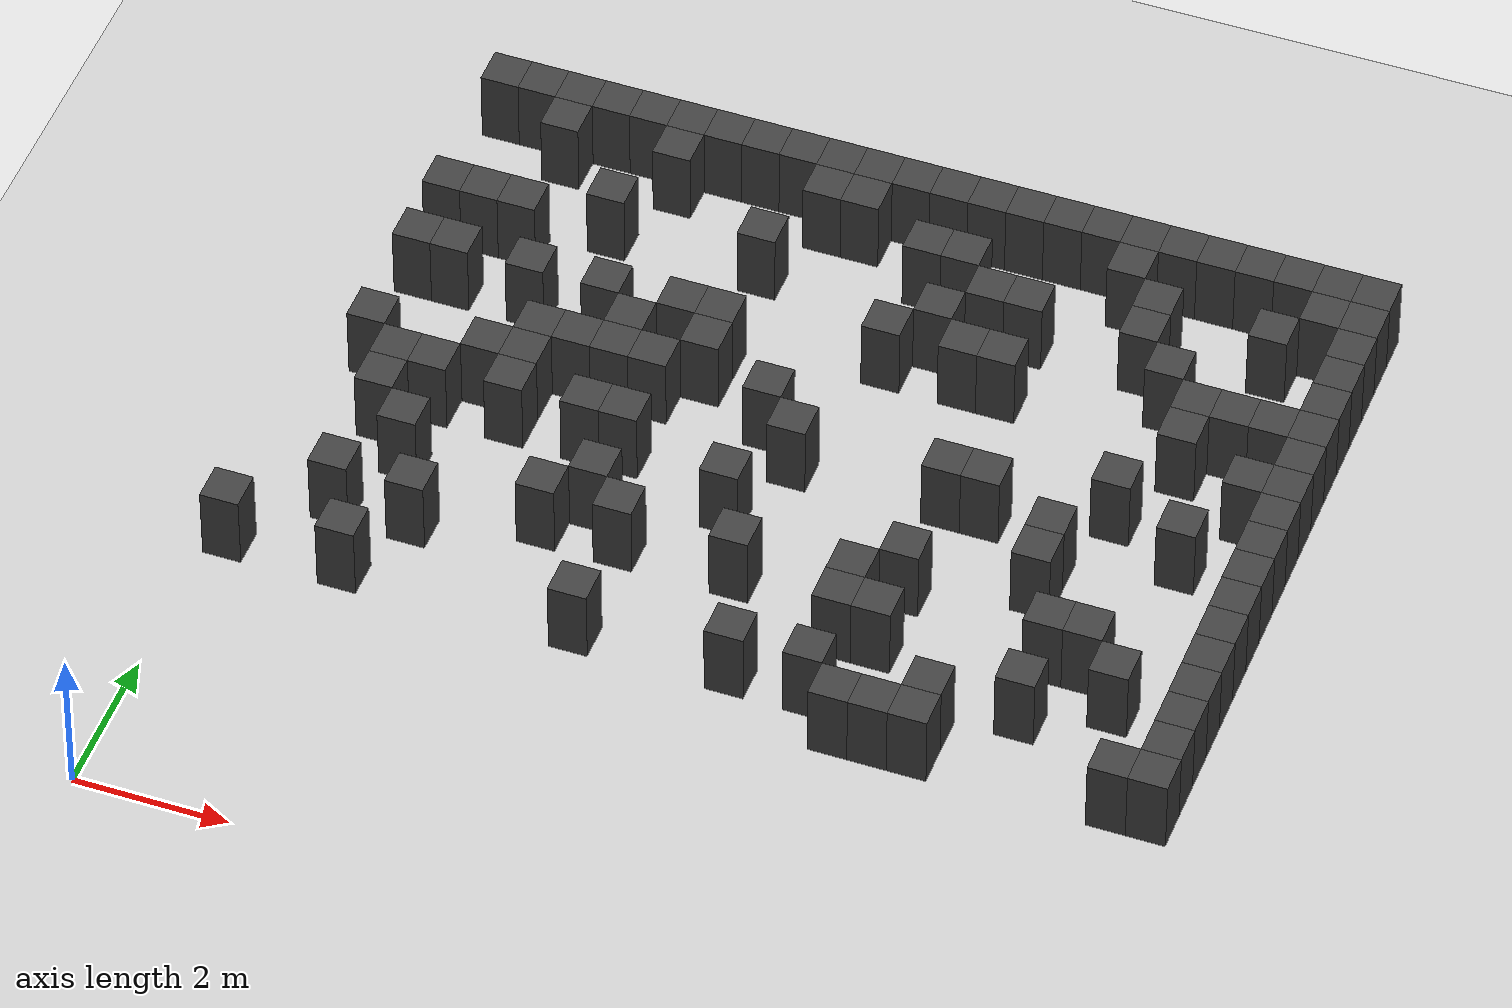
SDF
<sdf version="1.7">
 <world name="map_4951">
  <model name="ground_plane">
   <static>true</static>
   <link name="link">
    <collision name="collision">
     <geometry><plane><normal>0 0 1</normal><size>200 200</size></plane></geometry>
    </collision>
    <visual name="visual">
     <geometry><plane><normal>0 0 1</normal><size>200 200</size></plane></geometry>
     <material><ambient>0.8 0.8 0.8 1</ambient><diffuse>0.8 0.8 0.8 1</diffuse></material>
    </visual>
   </link>
  </model>
  <model name="maze_environment">
   <static>true</static>
   <link name="wall_26">
    <pose>0.750 12.250 0.500 0 0 0</pose>
    <collision name="col"><geometry><box><size>0.5 0.5 1.0</size></box></geometry></collision>
    <visual name="vis">
     <geometry><box><size>0.5 0.5 1.0</size></box></geometry>
     <material><ambient>0.15 0.15 0.15 1</ambient><diffuse>0.25 0.25 0.25 1</diffuse></material>
    </visual>
   </link>
   <link name="wall_27">
    <pose>1.250 12.250 0.500 0 0 0</pose>
    <collision name="col"><geometry><box><size>0.5 0.5 1.0</size></box></geometry></collision>
    <visual name="vis">
     <geometry><box><size>0.5 0.5 1.0</size></box></geometry>
     <material><ambient>0.15 0.15 0.15 1</ambient><diffuse>0.25 0.25 0.25 1</diffuse></material>
    </visual>
   </link>
   <link name="wall_28">
    <pose>1.750 12.250 0.500 0 0 0</pose>
    <collision name="col"><geometry><box><size>0.5 0.5 1.0</size></box></geometry></collision>
    <visual name="vis">
     <geometry><box><size>0.5 0.5 1.0</size></box></geometry>
     <material><ambient>0.15 0.15 0.15 1</ambient><diffuse>0.25 0.25 0.25 1</diffuse></material>
    </visual>
   </link>
   <link name="wall_29">
    <pose>2.250 12.250 0.500 0 0 0</pose>
    <collision name="col"><geometry><box><size>0.5 0.5 1.0</size></box></geometry></collision>
    <visual name="vis">
     <geometry><box><size>0.5 0.5 1.0</size></box></geometry>
     <material><ambient>0.15 0.15 0.15 1</ambient><diffuse>0.25 0.25 0.25 1</diffuse></material>
    </visual>
   </link>
   <link name="wall_30">
    <pose>2.750 12.250 0.500 0 0 0</pose>
    <collision name="col"><geometry><box><size>0.5 0.5 1.0</size></box></geometry></collision>
    <visual name="vis">
     <geometry><box><size>0.5 0.5 1.0</size></box></geometry>
     <material><ambient>0.15 0.15 0.15 1</ambient><diffuse>0.25 0.25 0.25 1</diffuse></material>
    </visual>
   </link>
   <link name="wall_31">
    <pose>3.250 12.250 0.500 0 0 0</pose>
    <collision name="col"><geometry><box><size>0.5 0.5 1.0</size></box></geometry></collision>
    <visual name="vis">
     <geometry><box><size>0.5 0.5 1.0</size></box></geometry>
     <material><ambient>0.15 0.15 0.15 1</ambient><diffuse>0.25 0.25 0.25 1</diffuse></material>
    </visual>
   </link>
   <link name="wall_32">
    <pose>3.750 12.250 0.500 0 0 0</pose>
    <collision name="col"><geometry><box><size>0.5 0.5 1.0</size></box></geometry></collision>
    <visual name="vis">
     <geometry><box><size>0.5 0.5 1.0</size></box></geometry>
     <material><ambient>0.15 0.15 0.15 1</ambient><diffuse>0.25 0.25 0.25 1</diffuse></material>
    </visual>
   </link>
   <link name="wall_33">
    <pose>4.250 12.250 0.500 0 0 0</pose>
    <collision name="col"><geometry><box><size>0.5 0.5 1.0</size></box></geometry></collision>
    <visual name="vis">
     <geometry><box><size>0.5 0.5 1.0</size></box></geometry>
     <material><ambient>0.15 0.15 0.15 1</ambient><diffuse>0.25 0.25 0.25 1</diffuse></material>
    </visual>
   </link>
   <link name="wall_34">
    <pose>4.750 12.250 0.500 0 0 0</pose>
    <collision name="col"><geometry><box><size>0.5 0.5 1.0</size></box></geometry></collision>
    <visual name="vis">
     <geometry><box><size>0.5 0.5 1.0</size></box></geometry>
     <material><ambient>0.15 0.15 0.15 1</ambient><diffuse>0.25 0.25 0.25 1</diffuse></material>
    </visual>
   </link>
   <link name="wall_35">
    <pose>5.250 12.250 0.500 0 0 0</pose>
    <collision name="col"><geometry><box><size>0.5 0.5 1.0</size></box></geometry></collision>
    <visual name="vis">
     <geometry><box><size>0.5 0.5 1.0</size></box></geometry>
     <material><ambient>0.15 0.15 0.15 1</ambient><diffuse>0.25 0.25 0.25 1</diffuse></material>
    </visual>
   </link>
   <link name="wall_36">
    <pose>5.750 12.250 0.500 0 0 0</pose>
    <collision name="col"><geometry><box><size>0.5 0.5 1.0</size></box></geometry></collision>
    <visual name="vis">
     <geometry><box><size>0.5 0.5 1.0</size></box></geometry>
     <material><ambient>0.15 0.15 0.15 1</ambient><diffuse>0.25 0.25 0.25 1</diffuse></material>
    </visual>
   </link>
   <link name="wall_37">
    <pose>6.250 12.250 0.500 0 0 0</pose>
    <collision name="col"><geometry><box><size>0.5 0.5 1.0</size></box></geometry></collision>
    <visual name="vis">
     <geometry><box><size>0.5 0.5 1.0</size></box></geometry>
     <material><ambient>0.15 0.15 0.15 1</ambient><diffuse>0.25 0.25 0.25 1</diffuse></material>
    </visual>
   </link>
   <link name="wall_38">
    <pose>6.750 12.250 0.500 0 0 0</pose>
    <collision name="col"><geometry><box><size>0.5 0.5 1.0</size></box></geometry></collision>
    <visual name="vis">
     <geometry><box><size>0.5 0.5 1.0</size></box></geometry>
     <material><ambient>0.15 0.15 0.15 1</ambient><diffuse>0.25 0.25 0.25 1</diffuse></material>
    </visual>
   </link>
   <link name="wall_39">
    <pose>7.250 12.250 0.500 0 0 0</pose>
    <collision name="col"><geometry><box><size>0.5 0.5 1.0</size></box></geometry></collision>
    <visual name="vis">
     <geometry><box><size>0.5 0.5 1.0</size></box></geometry>
     <material><ambient>0.15 0.15 0.15 1</ambient><diffuse>0.25 0.25 0.25 1</diffuse></material>
    </visual>
   </link>
   <link name="wall_40">
    <pose>7.750 12.250 0.500 0 0 0</pose>
    <collision name="col"><geometry><box><size>0.5 0.5 1.0</size></box></geometry></collision>
    <visual name="vis">
     <geometry><box><size>0.5 0.5 1.0</size></box></geometry>
     <material><ambient>0.15 0.15 0.15 1</ambient><diffuse>0.25 0.25 0.25 1</diffuse></material>
    </visual>
   </link>
   <link name="wall_41">
    <pose>8.250 12.250 0.500 0 0 0</pose>
    <collision name="col"><geometry><box><size>0.5 0.5 1.0</size></box></geometry></collision>
    <visual name="vis">
     <geometry><box><size>0.5 0.5 1.0</size></box></geometry>
     <material><ambient>0.15 0.15 0.15 1</ambient><diffuse>0.25 0.25 0.25 1</diffuse></material>
    </visual>
   </link>
   <link name="wall_42">
    <pose>8.750 12.250 0.500 0 0 0</pose>
    <collision name="col"><geometry><box><size>0.5 0.5 1.0</size></box></geometry></collision>
    <visual name="vis">
     <geometry><box><size>0.5 0.5 1.0</size></box></geometry>
     <material><ambient>0.15 0.15 0.15 1</ambient><diffuse>0.25 0.25 0.25 1</diffuse></material>
    </visual>
   </link>
   <link name="wall_43">
    <pose>9.250 12.250 0.500 0 0 0</pose>
    <collision name="col"><geometry><box><size>0.5 0.5 1.0</size></box></geometry></collision>
    <visual name="vis">
     <geometry><box><size>0.5 0.5 1.0</size></box></geometry>
     <material><ambient>0.15 0.15 0.15 1</ambient><diffuse>0.25 0.25 0.25 1</diffuse></material>
    </visual>
   </link>
   <link name="wall_44">
    <pose>9.750 12.250 0.500 0 0 0</pose>
    <collision name="col"><geometry><box><size>0.5 0.5 1.0</size></box></geometry></collision>
    <visual name="vis">
     <geometry><box><size>0.5 0.5 1.0</size></box></geometry>
     <material><ambient>0.15 0.15 0.15 1</ambient><diffuse>0.25 0.25 0.25 1</diffuse></material>
    </visual>
   </link>
   <link name="wall_45">
    <pose>10.250 12.250 0.500 0 0 0</pose>
    <collision name="col"><geometry><box><size>0.5 0.5 1.0</size></box></geometry></collision>
    <visual name="vis">
     <geometry><box><size>0.5 0.5 1.0</size></box></geometry>
     <material><ambient>0.15 0.15 0.15 1</ambient><diffuse>0.25 0.25 0.25 1</diffuse></material>
    </visual>
   </link>
   <link name="wall_46">
    <pose>10.750 12.250 0.500 0 0 0</pose>
    <collision name="col"><geometry><box><size>0.5 0.5 1.0</size></box></geometry></collision>
    <visual name="vis">
     <geometry><box><size>0.5 0.5 1.0</size></box></geometry>
     <material><ambient>0.15 0.15 0.15 1</ambient><diffuse>0.25 0.25 0.25 1</diffuse></material>
    </visual>
   </link>
   <link name="wall_47">
    <pose>11.250 12.250 0.500 0 0 0</pose>
    <collision name="col"><geometry><box><size>0.5 0.5 1.0</size></box></geometry></collision>
    <visual name="vis">
     <geometry><box><size>0.5 0.5 1.0</size></box></geometry>
     <material><ambient>0.15 0.15 0.15 1</ambient><diffuse>0.25 0.25 0.25 1</diffuse></material>
    </visual>
   </link>
   <link name="wall_48">
    <pose>11.750 12.250 0.500 0 0 0</pose>
    <collision name="col"><geometry><box><size>0.5 0.5 1.0</size></box></geometry></collision>
    <visual name="vis">
     <geometry><box><size>0.5 0.5 1.0</size></box></geometry>
     <material><ambient>0.15 0.15 0.15 1</ambient><diffuse>0.25 0.25 0.25 1</diffuse></material>
    </visual>
   </link>
   <link name="wall_49">
    <pose>12.250 12.250 0.500 0 0 0</pose>
    <collision name="col"><geometry><box><size>0.5 0.5 1.0</size></box></geometry></collision>
    <visual name="vis">
     <geometry><box><size>0.5 0.5 1.0</size></box></geometry>
     <material><ambient>0.15 0.15 0.15 1</ambient><diffuse>0.25 0.25 0.25 1</diffuse></material>
    </visual>
   </link>
   <link name="wall_57">
    <pose>1.750 11.750 0.500 0 0 0</pose>
    <collision name="col"><geometry><box><size>0.5 0.5 1.0</size></box></geometry></collision>
    <visual name="vis">
     <geometry><box><size>0.5 0.5 1.0</size></box></geometry>
     <material><ambient>0.15 0.15 0.15 1</ambient><diffuse>0.25 0.25 0.25 1</diffuse></material>
    </visual>
   </link>
   <link name="wall_58">
    <pose>3.250 11.750 0.500 0 0 0</pose>
    <collision name="col"><geometry><box><size>0.5 0.5 1.0</size></box></geometry></collision>
    <visual name="vis">
     <geometry><box><size>0.5 0.5 1.0</size></box></geometry>
     <material><ambient>0.15 0.15 0.15 1</ambient><diffuse>0.25 0.25 0.25 1</diffuse></material>
    </visual>
   </link>
   <link name="wall_59">
    <pose>5.250 11.750 0.500 0 0 0</pose>
    <collision name="col"><geometry><box><size>0.5 0.5 1.0</size></box></geometry></collision>
    <visual name="vis">
     <geometry><box><size>0.5 0.5 1.0</size></box></geometry>
     <material><ambient>0.15 0.15 0.15 1</ambient><diffuse>0.25 0.25 0.25 1</diffuse></material>
    </visual>
   </link>
   <link name="wall_60">
    <pose>5.750 11.750 0.500 0 0 0</pose>
    <collision name="col"><geometry><box><size>0.5 0.5 1.0</size></box></geometry></collision>
    <visual name="vis">
     <geometry><box><size>0.5 0.5 1.0</size></box></geometry>
     <material><ambient>0.15 0.15 0.15 1</ambient><diffuse>0.25 0.25 0.25 1</diffuse></material>
    </visual>
   </link>
   <link name="wall_61">
    <pose>9.250 11.750 0.500 0 0 0</pose>
    <collision name="col"><geometry><box><size>0.5 0.5 1.0</size></box></geometry></collision>
    <visual name="vis">
     <geometry><box><size>0.5 0.5 1.0</size></box></geometry>
     <material><ambient>0.15 0.15 0.15 1</ambient><diffuse>0.25 0.25 0.25 1</diffuse></material>
    </visual>
   </link>
   <link name="wall_62">
    <pose>11.750 11.750 0.500 0 0 0</pose>
    <collision name="col"><geometry><box><size>0.5 0.5 1.0</size></box></geometry></collision>
    <visual name="vis">
     <geometry><box><size>0.5 0.5 1.0</size></box></geometry>
     <material><ambient>0.15 0.15 0.15 1</ambient><diffuse>0.25 0.25 0.25 1</diffuse></material>
    </visual>
   </link>
   <link name="wall_63">
    <pose>12.250 11.750 0.500 0 0 0</pose>
    <collision name="col"><geometry><box><size>0.5 0.5 1.0</size></box></geometry></collision>
    <visual name="vis">
     <geometry><box><size>0.5 0.5 1.0</size></box></geometry>
     <material><ambient>0.15 0.15 0.15 1</ambient><diffuse>0.25 0.25 0.25 1</diffuse></material>
    </visual>
   </link>
   <link name="wall_74">
    <pose>6.750 11.250 0.500 0 0 0</pose>
    <collision name="col"><geometry><box><size>0.5 0.5 1.0</size></box></geometry></collision>
    <visual name="vis">
     <geometry><box><size>0.5 0.5 1.0</size></box></geometry>
     <material><ambient>0.15 0.15 0.15 1</ambient><diffuse>0.25 0.25 0.25 1</diffuse></material>
    </visual>
   </link>
   <link name="wall_75">
    <pose>7.250 11.250 0.500 0 0 0</pose>
    <collision name="col"><geometry><box><size>0.5 0.5 1.0</size></box></geometry></collision>
    <visual name="vis">
     <geometry><box><size>0.5 0.5 1.0</size></box></geometry>
     <material><ambient>0.15 0.15 0.15 1</ambient><diffuse>0.25 0.25 0.25 1</diffuse></material>
    </visual>
   </link>
   <link name="wall_76">
    <pose>9.750 11.250 0.500 0 0 0</pose>
    <collision name="col"><geometry><box><size>0.5 0.5 1.0</size></box></geometry></collision>
    <visual name="vis">
     <geometry><box><size>0.5 0.5 1.0</size></box></geometry>
     <material><ambient>0.15 0.15 0.15 1</ambient><diffuse>0.25 0.25 0.25 1</diffuse></material>
    </visual>
   </link>
   <link name="wall_77">
    <pose>11.250 11.250 0.500 0 0 0</pose>
    <collision name="col"><geometry><box><size>0.5 0.5 1.0</size></box></geometry></collision>
    <visual name="vis">
     <geometry><box><size>0.5 0.5 1.0</size></box></geometry>
     <material><ambient>0.15 0.15 0.15 1</ambient><diffuse>0.25 0.25 0.25 1</diffuse></material>
    </visual>
   </link>
   <link name="wall_78">
    <pose>12.250 11.250 0.500 0 0 0</pose>
    <collision name="col"><geometry><box><size>0.5 0.5 1.0</size></box></geometry></collision>
    <visual name="vis">
     <geometry><box><size>0.5 0.5 1.0</size></box></geometry>
     <material><ambient>0.15 0.15 0.15 1</ambient><diffuse>0.25 0.25 0.25 1</diffuse></material>
    </visual>
   </link>
   <link name="wall_85">
    <pose>2.750 10.750 0.500 0 0 0</pose>
    <collision name="col"><geometry><box><size>0.5 0.5 1.0</size></box></geometry></collision>
    <visual name="vis">
     <geometry><box><size>0.5 0.5 1.0</size></box></geometry>
     <material><ambient>0.15 0.15 0.15 1</ambient><diffuse>0.25 0.25 0.25 1</diffuse></material>
    </visual>
   </link>
   <link name="wall_86">
    <pose>4.750 10.750 0.500 0 0 0</pose>
    <collision name="col"><geometry><box><size>0.5 0.5 1.0</size></box></geometry></collision>
    <visual name="vis">
     <geometry><box><size>0.5 0.5 1.0</size></box></geometry>
     <material><ambient>0.15 0.15 0.15 1</ambient><diffuse>0.25 0.25 0.25 1</diffuse></material>
    </visual>
   </link>
   <link name="wall_87">
    <pose>7.750 10.750 0.500 0 0 0</pose>
    <collision name="col"><geometry><box><size>0.5 0.5 1.0</size></box></geometry></collision>
    <visual name="vis">
     <geometry><box><size>0.5 0.5 1.0</size></box></geometry>
     <material><ambient>0.15 0.15 0.15 1</ambient><diffuse>0.25 0.25 0.25 1</diffuse></material>
    </visual>
   </link>
   <link name="wall_88">
    <pose>8.250 10.750 0.500 0 0 0</pose>
    <collision name="col"><geometry><box><size>0.5 0.5 1.0</size></box></geometry></collision>
    <visual name="vis">
     <geometry><box><size>0.5 0.5 1.0</size></box></geometry>
     <material><ambient>0.15 0.15 0.15 1</ambient><diffuse>0.25 0.25 0.25 1</diffuse></material>
    </visual>
   </link>
   <link name="wall_89">
    <pose>9.750 10.750 0.500 0 0 0</pose>
    <collision name="col"><geometry><box><size>0.5 0.5 1.0</size></box></geometry></collision>
    <visual name="vis">
     <geometry><box><size>0.5 0.5 1.0</size></box></geometry>
     <material><ambient>0.15 0.15 0.15 1</ambient><diffuse>0.25 0.25 0.25 1</diffuse></material>
    </visual>
   </link>
   <link name="wall_90">
    <pose>12.250 10.750 0.500 0 0 0</pose>
    <collision name="col"><geometry><box><size>0.5 0.5 1.0</size></box></geometry></collision>
    <visual name="vis">
     <geometry><box><size>0.5 0.5 1.0</size></box></geometry>
     <material><ambient>0.15 0.15 0.15 1</ambient><diffuse>0.25 0.25 0.25 1</diffuse></material>
    </visual>
   </link>
   <link name="wall_100">
    <pose>0.750 10.250 0.500 0 0 0</pose>
    <collision name="col"><geometry><box><size>0.5 0.5 1.0</size></box></geometry></collision>
    <visual name="vis">
     <geometry><box><size>0.5 0.5 1.0</size></box></geometry>
     <material><ambient>0.15 0.15 0.15 1</ambient><diffuse>0.25 0.25 0.25 1</diffuse></material>
    </visual>
   </link>
   <link name="wall_101">
    <pose>1.250 10.250 0.500 0 0 0</pose>
    <collision name="col"><geometry><box><size>0.5 0.5 1.0</size></box></geometry></collision>
    <visual name="vis">
     <geometry><box><size>0.5 0.5 1.0</size></box></geometry>
     <material><ambient>0.15 0.15 0.15 1</ambient><diffuse>0.25 0.25 0.25 1</diffuse></material>
    </visual>
   </link>
   <link name="wall_102">
    <pose>1.750 10.250 0.500 0 0 0</pose>
    <collision name="col"><geometry><box><size>0.5 0.5 1.0</size></box></geometry></collision>
    <visual name="vis">
     <geometry><box><size>0.5 0.5 1.0</size></box></geometry>
     <material><ambient>0.15 0.15 0.15 1</ambient><diffuse>0.25 0.25 0.25 1</diffuse></material>
    </visual>
   </link>
   <link name="wall_103">
    <pose>7.250 10.250 0.500 0 0 0</pose>
    <collision name="col"><geometry><box><size>0.5 0.5 1.0</size></box></geometry></collision>
    <visual name="vis">
     <geometry><box><size>0.5 0.5 1.0</size></box></geometry>
     <material><ambient>0.15 0.15 0.15 1</ambient><diffuse>0.25 0.25 0.25 1</diffuse></material>
    </visual>
   </link>
   <link name="wall_104">
    <pose>10.250 10.250 0.500 0 0 0</pose>
    <collision name="col"><geometry><box><size>0.5 0.5 1.0</size></box></geometry></collision>
    <visual name="vis">
     <geometry><box><size>0.5 0.5 1.0</size></box></geometry>
     <material><ambient>0.15 0.15 0.15 1</ambient><diffuse>0.25 0.25 0.25 1</diffuse></material>
    </visual>
   </link>
   <link name="wall_105">
    <pose>12.250 10.250 0.500 0 0 0</pose>
    <collision name="col"><geometry><box><size>0.5 0.5 1.0</size></box></geometry></collision>
    <visual name="vis">
     <geometry><box><size>0.5 0.5 1.0</size></box></geometry>
     <material><ambient>0.15 0.15 0.15 1</ambient><diffuse>0.25 0.25 0.25 1</diffuse></material>
    </visual>
   </link>
   <link name="wall_110">
    <pose>6.750 9.750 0.500 0 0 0</pose>
    <collision name="col"><geometry><box><size>0.5 0.5 1.0</size></box></geometry></collision>
    <visual name="vis">
     <geometry><box><size>0.5 0.5 1.0</size></box></geometry>
     <material><ambient>0.15 0.15 0.15 1</ambient><diffuse>0.25 0.25 0.25 1</diffuse></material>
    </visual>
   </link>
   <link name="wall_111">
    <pose>7.750 9.750 0.500 0 0 0</pose>
    <collision name="col"><geometry><box><size>0.5 0.5 1.0</size></box></geometry></collision>
    <visual name="vis">
     <geometry><box><size>0.5 0.5 1.0</size></box></geometry>
     <material><ambient>0.15 0.15 0.15 1</ambient><diffuse>0.25 0.25 0.25 1</diffuse></material>
    </visual>
   </link>
   <link name="wall_112">
    <pose>8.250 9.750 0.500 0 0 0</pose>
    <collision name="col"><geometry><box><size>0.5 0.5 1.0</size></box></geometry></collision>
    <visual name="vis">
     <geometry><box><size>0.5 0.5 1.0</size></box></geometry>
     <material><ambient>0.15 0.15 0.15 1</ambient><diffuse>0.25 0.25 0.25 1</diffuse></material>
    </visual>
   </link>
   <link name="wall_113">
    <pose>10.750 9.750 0.500 0 0 0</pose>
    <collision name="col"><geometry><box><size>0.5 0.5 1.0</size></box></geometry></collision>
    <visual name="vis">
     <geometry><box><size>0.5 0.5 1.0</size></box></geometry>
     <material><ambient>0.15 0.15 0.15 1</ambient><diffuse>0.25 0.25 0.25 1</diffuse></material>
    </visual>
   </link>
   <link name="wall_114">
    <pose>11.250 9.750 0.500 0 0 0</pose>
    <collision name="col"><geometry><box><size>0.5 0.5 1.0</size></box></geometry></collision>
    <visual name="vis">
     <geometry><box><size>0.5 0.5 1.0</size></box></geometry>
     <material><ambient>0.15 0.15 0.15 1</ambient><diffuse>0.25 0.25 0.25 1</diffuse></material>
    </visual>
   </link>
   <link name="wall_115">
    <pose>11.750 9.750 0.500 0 0 0</pose>
    <collision name="col"><geometry><box><size>0.5 0.5 1.0</size></box></geometry></collision>
    <visual name="vis">
     <geometry><box><size>0.5 0.5 1.0</size></box></geometry>
     <material><ambient>0.15 0.15 0.15 1</ambient><diffuse>0.25 0.25 0.25 1</diffuse></material>
    </visual>
   </link>
   <link name="wall_116">
    <pose>12.250 9.750 0.500 0 0 0</pose>
    <collision name="col"><geometry><box><size>0.5 0.5 1.0</size></box></geometry></collision>
    <visual name="vis">
     <geometry><box><size>0.5 0.5 1.0</size></box></geometry>
     <material><ambient>0.15 0.15 0.15 1</ambient><diffuse>0.25 0.25 0.25 1</diffuse></material>
    </visual>
   </link>
   <link name="wall_123">
    <pose>0.750 9.250 0.500 0 0 0</pose>
    <collision name="col"><geometry><box><size>0.5 0.5 1.0</size></box></geometry></collision>
    <visual name="vis">
     <geometry><box><size>0.5 0.5 1.0</size></box></geometry>
     <material><ambient>0.15 0.15 0.15 1</ambient><diffuse>0.25 0.25 0.25 1</diffuse></material>
    </visual>
   </link>
   <link name="wall_124">
    <pose>1.250 9.250 0.500 0 0 0</pose>
    <collision name="col"><geometry><box><size>0.5 0.5 1.0</size></box></geometry></collision>
    <visual name="vis">
     <geometry><box><size>0.5 0.5 1.0</size></box></geometry>
     <material><ambient>0.15 0.15 0.15 1</ambient><diffuse>0.25 0.25 0.25 1</diffuse></material>
    </visual>
   </link>
   <link name="wall_125">
    <pose>2.250 9.250 0.500 0 0 0</pose>
    <collision name="col"><geometry><box><size>0.5 0.5 1.0</size></box></geometry></collision>
    <visual name="vis">
     <geometry><box><size>0.5 0.5 1.0</size></box></geometry>
     <material><ambient>0.15 0.15 0.15 1</ambient><diffuse>0.25 0.25 0.25 1</diffuse></material>
    </visual>
   </link>
   <link name="wall_126">
    <pose>3.250 9.250 0.500 0 0 0</pose>
    <collision name="col"><geometry><box><size>0.5 0.5 1.0</size></box></geometry></collision>
    <visual name="vis">
     <geometry><box><size>0.5 0.5 1.0</size></box></geometry>
     <material><ambient>0.15 0.15 0.15 1</ambient><diffuse>0.25 0.25 0.25 1</diffuse></material>
    </visual>
   </link>
   <link name="wall_127">
    <pose>4.250 9.250 0.500 0 0 0</pose>
    <collision name="col"><geometry><box><size>0.5 0.5 1.0</size></box></geometry></collision>
    <visual name="vis">
     <geometry><box><size>0.5 0.5 1.0</size></box></geometry>
     <material><ambient>0.15 0.15 0.15 1</ambient><diffuse>0.25 0.25 0.25 1</diffuse></material>
    </visual>
   </link>
   <link name="wall_128">
    <pose>4.750 9.250 0.500 0 0 0</pose>
    <collision name="col"><geometry><box><size>0.5 0.5 1.0</size></box></geometry></collision>
    <visual name="vis">
     <geometry><box><size>0.5 0.5 1.0</size></box></geometry>
     <material><ambient>0.15 0.15 0.15 1</ambient><diffuse>0.25 0.25 0.25 1</diffuse></material>
    </visual>
   </link>
   <link name="wall_129">
    <pose>10.750 9.250 0.500 0 0 0</pose>
    <collision name="col"><geometry><box><size>0.5 0.5 1.0</size></box></geometry></collision>
    <visual name="vis">
     <geometry><box><size>0.5 0.5 1.0</size></box></geometry>
     <material><ambient>0.15 0.15 0.15 1</ambient><diffuse>0.25 0.25 0.25 1</diffuse></material>
    </visual>
   </link>
   <link name="wall_130">
    <pose>12.250 9.250 0.500 0 0 0</pose>
    <collision name="col"><geometry><box><size>0.5 0.5 1.0</size></box></geometry></collision>
    <visual name="vis">
     <geometry><box><size>0.5 0.5 1.0</size></box></geometry>
     <material><ambient>0.15 0.15 0.15 1</ambient><diffuse>0.25 0.25 0.25 1</diffuse></material>
    </visual>
   </link>
   <link name="wall_135">
    <pose>3.750 8.750 0.500 0 0 0</pose>
    <collision name="col"><geometry><box><size>0.5 0.5 1.0</size></box></geometry></collision>
    <visual name="vis">
     <geometry><box><size>0.5 0.5 1.0</size></box></geometry>
     <material><ambient>0.15 0.15 0.15 1</ambient><diffuse>0.25 0.25 0.25 1</diffuse></material>
    </visual>
   </link>
   <link name="wall_136">
    <pose>4.750 8.750 0.500 0 0 0</pose>
    <collision name="col"><geometry><box><size>0.5 0.5 1.0</size></box></geometry></collision>
    <visual name="vis">
     <geometry><box><size>0.5 0.5 1.0</size></box></geometry>
     <material><ambient>0.15 0.15 0.15 1</ambient><diffuse>0.25 0.25 0.25 1</diffuse></material>
    </visual>
   </link>
   <link name="wall_137">
    <pose>11.750 8.750 0.500 0 0 0</pose>
    <collision name="col"><geometry><box><size>0.5 0.5 1.0</size></box></geometry></collision>
    <visual name="vis">
     <geometry><box><size>0.5 0.5 1.0</size></box></geometry>
     <material><ambient>0.15 0.15 0.15 1</ambient><diffuse>0.25 0.25 0.25 1</diffuse></material>
    </visual>
   </link>
   <link name="wall_138">
    <pose>12.250 8.750 0.500 0 0 0</pose>
    <collision name="col"><geometry><box><size>0.5 0.5 1.0</size></box></geometry></collision>
    <visual name="vis">
     <geometry><box><size>0.5 0.5 1.0</size></box></geometry>
     <material><ambient>0.15 0.15 0.15 1</ambient><diffuse>0.25 0.25 0.25 1</diffuse></material>
    </visual>
   </link>
   <link name="wall_145">
    <pose>2.750 8.250 0.500 0 0 0</pose>
    <collision name="col"><geometry><box><size>0.5 0.5 1.0</size></box></geometry></collision>
    <visual name="vis">
     <geometry><box><size>0.5 0.5 1.0</size></box></geometry>
     <material><ambient>0.15 0.15 0.15 1</ambient><diffuse>0.25 0.25 0.25 1</diffuse></material>
    </visual>
   </link>
   <link name="wall_146">
    <pose>3.250 8.250 0.500 0 0 0</pose>
    <collision name="col"><geometry><box><size>0.5 0.5 1.0</size></box></geometry></collision>
    <visual name="vis">
     <geometry><box><size>0.5 0.5 1.0</size></box></geometry>
     <material><ambient>0.15 0.15 0.15 1</ambient><diffuse>0.25 0.25 0.25 1</diffuse></material>
    </visual>
   </link>
   <link name="wall_147">
    <pose>3.750 8.250 0.500 0 0 0</pose>
    <collision name="col"><geometry><box><size>0.5 0.5 1.0</size></box></geometry></collision>
    <visual name="vis">
     <geometry><box><size>0.5 0.5 1.0</size></box></geometry>
     <material><ambient>0.15 0.15 0.15 1</ambient><diffuse>0.25 0.25 0.25 1</diffuse></material>
    </visual>
   </link>
   <link name="wall_148">
    <pose>4.250 8.250 0.500 0 0 0</pose>
    <collision name="col"><geometry><box><size>0.5 0.5 1.0</size></box></geometry></collision>
    <visual name="vis">
     <geometry><box><size>0.5 0.5 1.0</size></box></geometry>
     <material><ambient>0.15 0.15 0.15 1</ambient><diffuse>0.25 0.25 0.25 1</diffuse></material>
    </visual>
   </link>
   <link name="wall_149">
    <pose>5.750 8.250 0.500 0 0 0</pose>
    <collision name="col"><geometry><box><size>0.5 0.5 1.0</size></box></geometry></collision>
    <visual name="vis">
     <geometry><box><size>0.5 0.5 1.0</size></box></geometry>
     <material><ambient>0.15 0.15 0.15 1</ambient><diffuse>0.25 0.25 0.25 1</diffuse></material>
    </visual>
   </link>
   <link name="wall_150">
    <pose>10.250 8.250 0.500 0 0 0</pose>
    <collision name="col"><geometry><box><size>0.5 0.5 1.0</size></box></geometry></collision>
    <visual name="vis">
     <geometry><box><size>0.5 0.5 1.0</size></box></geometry>
     <material><ambient>0.15 0.15 0.15 1</ambient><diffuse>0.25 0.25 0.25 1</diffuse></material>
    </visual>
   </link>
   <link name="wall_151">
    <pose>12.250 8.250 0.500 0 0 0</pose>
    <collision name="col"><geometry><box><size>0.5 0.5 1.0</size></box></geometry></collision>
    <visual name="vis">
     <geometry><box><size>0.5 0.5 1.0</size></box></geometry>
     <material><ambient>0.15 0.15 0.15 1</ambient><diffuse>0.25 0.25 0.25 1</diffuse></material>
    </visual>
   </link>
   <link name="wall_159">
    <pose>0.750 7.750 0.500 0 0 0</pose>
    <collision name="col"><geometry><box><size>0.5 0.5 1.0</size></box></geometry></collision>
    <visual name="vis">
     <geometry><box><size>0.5 0.5 1.0</size></box></geometry>
     <material><ambient>0.15 0.15 0.15 1</ambient><diffuse>0.25 0.25 0.25 1</diffuse></material>
    </visual>
   </link>
   <link name="wall_160">
    <pose>2.250 7.750 0.500 0 0 0</pose>
    <collision name="col"><geometry><box><size>0.5 0.5 1.0</size></box></geometry></collision>
    <visual name="vis">
     <geometry><box><size>0.5 0.5 1.0</size></box></geometry>
     <material><ambient>0.15 0.15 0.15 1</ambient><diffuse>0.25 0.25 0.25 1</diffuse></material>
    </visual>
   </link>
   <link name="wall_161">
    <pose>2.750 7.750 0.500 0 0 0</pose>
    <collision name="col"><geometry><box><size>0.5 0.5 1.0</size></box></geometry></collision>
    <visual name="vis">
     <geometry><box><size>0.5 0.5 1.0</size></box></geometry>
     <material><ambient>0.15 0.15 0.15 1</ambient><diffuse>0.25 0.25 0.25 1</diffuse></material>
    </visual>
   </link>
   <link name="wall_162">
    <pose>6.250 7.750 0.500 0 0 0</pose>
    <collision name="col"><geometry><box><size>0.5 0.5 1.0</size></box></geometry></collision>
    <visual name="vis">
     <geometry><box><size>0.5 0.5 1.0</size></box></geometry>
     <material><ambient>0.15 0.15 0.15 1</ambient><diffuse>0.25 0.25 0.25 1</diffuse></material>
    </visual>
   </link>
   <link name="wall_163">
    <pose>8.250 7.750 0.500 0 0 0</pose>
    <collision name="col"><geometry><box><size>0.5 0.5 1.0</size></box></geometry></collision>
    <visual name="vis">
     <geometry><box><size>0.5 0.5 1.0</size></box></geometry>
     <material><ambient>0.15 0.15 0.15 1</ambient><diffuse>0.25 0.25 0.25 1</diffuse></material>
    </visual>
   </link>
   <link name="wall_164">
    <pose>8.750 7.750 0.500 0 0 0</pose>
    <collision name="col"><geometry><box><size>0.5 0.5 1.0</size></box></geometry></collision>
    <visual name="vis">
     <geometry><box><size>0.5 0.5 1.0</size></box></geometry>
     <material><ambient>0.15 0.15 0.15 1</ambient><diffuse>0.25 0.25 0.25 1</diffuse></material>
    </visual>
   </link>
   <link name="wall_165">
    <pose>11.250 7.750 0.500 0 0 0</pose>
    <collision name="col"><geometry><box><size>0.5 0.5 1.0</size></box></geometry></collision>
    <visual name="vis">
     <geometry><box><size>0.5 0.5 1.0</size></box></geometry>
     <material><ambient>0.15 0.15 0.15 1</ambient><diffuse>0.25 0.25 0.25 1</diffuse></material>
    </visual>
   </link>
   <link name="wall_166">
    <pose>12.250 7.750 0.500 0 0 0</pose>
    <collision name="col"><geometry><box><size>0.5 0.5 1.0</size></box></geometry></collision>
    <visual name="vis">
     <geometry><box><size>0.5 0.5 1.0</size></box></geometry>
     <material><ambient>0.15 0.15 0.15 1</ambient><diffuse>0.25 0.25 0.25 1</diffuse></material>
    </visual>
   </link>
   <link name="wall_174">
    <pose>1.250 7.250 0.500 0 0 0</pose>
    <collision name="col"><geometry><box><size>0.5 0.5 1.0</size></box></geometry></collision>
    <visual name="vis">
     <geometry><box><size>0.5 0.5 1.0</size></box></geometry>
     <material><ambient>0.15 0.15 0.15 1</ambient><diffuse>0.25 0.25 0.25 1</diffuse></material>
    </visual>
   </link>
   <link name="wall_175">
    <pose>1.750 7.250 0.500 0 0 0</pose>
    <collision name="col"><geometry><box><size>0.5 0.5 1.0</size></box></geometry></collision>
    <visual name="vis">
     <geometry><box><size>0.5 0.5 1.0</size></box></geometry>
     <material><ambient>0.15 0.15 0.15 1</ambient><diffuse>0.25 0.25 0.25 1</diffuse></material>
    </visual>
   </link>
   <link name="wall_176">
    <pose>2.750 7.250 0.500 0 0 0</pose>
    <collision name="col"><geometry><box><size>0.5 0.5 1.0</size></box></geometry></collision>
    <visual name="vis">
     <geometry><box><size>0.5 0.5 1.0</size></box></geometry>
     <material><ambient>0.15 0.15 0.15 1</ambient><diffuse>0.25 0.25 0.25 1</diffuse></material>
    </visual>
   </link>
   <link name="wall_177">
    <pose>3.750 7.250 0.500 0 0 0</pose>
    <collision name="col"><geometry><box><size>0.5 0.5 1.0</size></box></geometry></collision>
    <visual name="vis">
     <geometry><box><size>0.5 0.5 1.0</size></box></geometry>
     <material><ambient>0.15 0.15 0.15 1</ambient><diffuse>0.25 0.25 0.25 1</diffuse></material>
    </visual>
   </link>
   <link name="wall_178">
    <pose>4.250 7.250 0.500 0 0 0</pose>
    <collision name="col"><geometry><box><size>0.5 0.5 1.0</size></box></geometry></collision>
    <visual name="vis">
     <geometry><box><size>0.5 0.5 1.0</size></box></geometry>
     <material><ambient>0.15 0.15 0.15 1</ambient><diffuse>0.25 0.25 0.25 1</diffuse></material>
    </visual>
   </link>
   <link name="wall_179">
    <pose>9.750 7.250 0.500 0 0 0</pose>
    <collision name="col"><geometry><box><size>0.5 0.5 1.0</size></box></geometry></collision>
    <visual name="vis">
     <geometry><box><size>0.5 0.5 1.0</size></box></geometry>
     <material><ambient>0.15 0.15 0.15 1</ambient><diffuse>0.25 0.25 0.25 1</diffuse></material>
    </visual>
   </link>
   <link name="wall_180">
    <pose>12.250 7.250 0.500 0 0 0</pose>
    <collision name="col"><geometry><box><size>0.5 0.5 1.0</size></box></geometry></collision>
    <visual name="vis">
     <geometry><box><size>0.5 0.5 1.0</size></box></geometry>
     <material><ambient>0.15 0.15 0.15 1</ambient><diffuse>0.25 0.25 0.25 1</diffuse></material>
    </visual>
   </link>
   <link name="wall_186">
    <pose>1.250 6.750 0.500 0 0 0</pose>
    <collision name="col"><geometry><box><size>0.5 0.5 1.0</size></box></geometry></collision>
    <visual name="vis">
     <geometry><box><size>0.5 0.5 1.0</size></box></geometry>
     <material><ambient>0.15 0.15 0.15 1</ambient><diffuse>0.25 0.25 0.25 1</diffuse></material>
    </visual>
   </link>
   <link name="wall_187">
    <pose>5.750 6.750 0.500 0 0 0</pose>
    <collision name="col"><geometry><box><size>0.5 0.5 1.0</size></box></geometry></collision>
    <visual name="vis">
     <geometry><box><size>0.5 0.5 1.0</size></box></geometry>
     <material><ambient>0.15 0.15 0.15 1</ambient><diffuse>0.25 0.25 0.25 1</diffuse></material>
    </visual>
   </link>
   <link name="wall_188">
    <pose>9.750 6.750 0.500 0 0 0</pose>
    <collision name="col"><geometry><box><size>0.5 0.5 1.0</size></box></geometry></collision>
    <visual name="vis">
     <geometry><box><size>0.5 0.5 1.0</size></box></geometry>
     <material><ambient>0.15 0.15 0.15 1</ambient><diffuse>0.25 0.25 0.25 1</diffuse></material>
    </visual>
   </link>
   <link name="wall_189">
    <pose>12.250 6.750 0.500 0 0 0</pose>
    <collision name="col"><geometry><box><size>0.5 0.5 1.0</size></box></geometry></collision>
    <visual name="vis">
     <geometry><box><size>0.5 0.5 1.0</size></box></geometry>
     <material><ambient>0.15 0.15 0.15 1</ambient><diffuse>0.25 0.25 0.25 1</diffuse></material>
    </visual>
   </link>
   <link name="wall_199">
    <pose>1.750 6.250 0.500 0 0 0</pose>
    <collision name="col"><geometry><box><size>0.5 0.5 1.0</size></box></geometry></collision>
    <visual name="vis">
     <geometry><box><size>0.5 0.5 1.0</size></box></geometry>
     <material><ambient>0.15 0.15 0.15 1</ambient><diffuse>0.25 0.25 0.25 1</diffuse></material>
    </visual>
   </link>
   <link name="wall_200">
    <pose>4.250 6.250 0.500 0 0 0</pose>
    <collision name="col"><geometry><box><size>0.5 0.5 1.0</size></box></geometry></collision>
    <visual name="vis">
     <geometry><box><size>0.5 0.5 1.0</size></box></geometry>
     <material><ambient>0.15 0.15 0.15 1</ambient><diffuse>0.25 0.25 0.25 1</diffuse></material>
    </visual>
   </link>
   <link name="wall_201">
    <pose>8.250 6.250 0.500 0 0 0</pose>
    <collision name="col"><geometry><box><size>0.5 0.5 1.0</size></box></geometry></collision>
    <visual name="vis">
     <geometry><box><size>0.5 0.5 1.0</size></box></geometry>
     <material><ambient>0.15 0.15 0.15 1</ambient><diffuse>0.25 0.25 0.25 1</diffuse></material>
    </visual>
   </link>
   <link name="wall_202">
    <pose>12.250 6.250 0.500 0 0 0</pose>
    <collision name="col"><geometry><box><size>0.5 0.5 1.0</size></box></geometry></collision>
    <visual name="vis">
     <geometry><box><size>0.5 0.5 1.0</size></box></geometry>
     <material><ambient>0.15 0.15 0.15 1</ambient><diffuse>0.25 0.25 0.25 1</diffuse></material>
    </visual>
   </link>
   <link name="wall_211">
    <pose>3.750 5.750 0.500 0 0 0</pose>
    <collision name="col"><geometry><box><size>0.5 0.5 1.0</size></box></geometry></collision>
    <visual name="vis">
     <geometry><box><size>0.5 0.5 1.0</size></box></geometry>
     <material><ambient>0.15 0.15 0.15 1</ambient><diffuse>0.25 0.25 0.25 1</diffuse></material>
    </visual>
   </link>
   <link name="wall_212">
    <pose>4.750 5.750 0.500 0 0 0</pose>
    <collision name="col"><geometry><box><size>0.5 0.5 1.0</size></box></geometry></collision>
    <visual name="vis">
     <geometry><box><size>0.5 0.5 1.0</size></box></geometry>
     <material><ambient>0.15 0.15 0.15 1</ambient><diffuse>0.25 0.25 0.25 1</diffuse></material>
    </visual>
   </link>
   <link name="wall_213">
    <pose>6.250 5.750 0.500 0 0 0</pose>
    <collision name="col"><geometry><box><size>0.5 0.5 1.0</size></box></geometry></collision>
    <visual name="vis">
     <geometry><box><size>0.5 0.5 1.0</size></box></geometry>
     <material><ambient>0.15 0.15 0.15 1</ambient><diffuse>0.25 0.25 0.25 1</diffuse></material>
    </visual>
   </link>
   <link name="wall_214">
    <pose>7.750 5.750 0.500 0 0 0</pose>
    <collision name="col"><geometry><box><size>0.5 0.5 1.0</size></box></geometry></collision>
    <visual name="vis">
     <geometry><box><size>0.5 0.5 1.0</size></box></geometry>
     <material><ambient>0.15 0.15 0.15 1</ambient><diffuse>0.25 0.25 0.25 1</diffuse></material>
    </visual>
   </link>
   <link name="wall_215">
    <pose>10.250 5.750 0.500 0 0 0</pose>
    <collision name="col"><geometry><box><size>0.5 0.5 1.0</size></box></geometry></collision>
    <visual name="vis">
     <geometry><box><size>0.5 0.5 1.0</size></box></geometry>
     <material><ambient>0.15 0.15 0.15 1</ambient><diffuse>0.25 0.25 0.25 1</diffuse></material>
    </visual>
   </link>
   <link name="wall_216">
    <pose>10.750 5.750 0.500 0 0 0</pose>
    <collision name="col"><geometry><box><size>0.5 0.5 1.0</size></box></geometry></collision>
    <visual name="vis">
     <geometry><box><size>0.5 0.5 1.0</size></box></geometry>
     <material><ambient>0.15 0.15 0.15 1</ambient><diffuse>0.25 0.25 0.25 1</diffuse></material>
    </visual>
   </link>
   <link name="wall_217">
    <pose>12.250 5.750 0.500 0 0 0</pose>
    <collision name="col"><geometry><box><size>0.5 0.5 1.0</size></box></geometry></collision>
    <visual name="vis">
     <geometry><box><size>0.5 0.5 1.0</size></box></geometry>
     <material><ambient>0.15 0.15 0.15 1</ambient><diffuse>0.25 0.25 0.25 1</diffuse></material>
    </visual>
   </link>
   <link name="wall_227">
    <pose>1.250 5.250 0.500 0 0 0</pose>
    <collision name="col"><geometry><box><size>0.5 0.5 1.0</size></box></geometry></collision>
    <visual name="vis">
     <geometry><box><size>0.5 0.5 1.0</size></box></geometry>
     <material><ambient>0.15 0.15 0.15 1</ambient><diffuse>0.25 0.25 0.25 1</diffuse></material>
    </visual>
   </link>
   <link name="wall_228">
    <pose>2.250 5.250 0.500 0 0 0</pose>
    <collision name="col"><geometry><box><size>0.5 0.5 1.0</size></box></geometry></collision>
    <visual name="vis">
     <geometry><box><size>0.5 0.5 1.0</size></box></geometry>
     <material><ambient>0.15 0.15 0.15 1</ambient><diffuse>0.25 0.25 0.25 1</diffuse></material>
    </visual>
   </link>
   <link name="wall_229">
    <pose>7.750 5.250 0.500 0 0 0</pose>
    <collision name="col"><geometry><box><size>0.5 0.5 1.0</size></box></geometry></collision>
    <visual name="vis">
     <geometry><box><size>0.5 0.5 1.0</size></box></geometry>
     <material><ambient>0.15 0.15 0.15 1</ambient><diffuse>0.25 0.25 0.25 1</diffuse></material>
    </visual>
   </link>
   <link name="wall_230">
    <pose>8.250 5.250 0.500 0 0 0</pose>
    <collision name="col"><geometry><box><size>0.5 0.5 1.0</size></box></geometry></collision>
    <visual name="vis">
     <geometry><box><size>0.5 0.5 1.0</size></box></geometry>
     <material><ambient>0.15 0.15 0.15 1</ambient><diffuse>0.25 0.25 0.25 1</diffuse></material>
    </visual>
   </link>
   <link name="wall_231">
    <pose>11.250 5.250 0.500 0 0 0</pose>
    <collision name="col"><geometry><box><size>0.5 0.5 1.0</size></box></geometry></collision>
    <visual name="vis">
     <geometry><box><size>0.5 0.5 1.0</size></box></geometry>
     <material><ambient>0.15 0.15 0.15 1</ambient><diffuse>0.25 0.25 0.25 1</diffuse></material>
    </visual>
   </link>
   <link name="wall_232">
    <pose>12.250 5.250 0.500 0 0 0</pose>
    <collision name="col"><geometry><box><size>0.5 0.5 1.0</size></box></geometry></collision>
    <visual name="vis">
     <geometry><box><size>0.5 0.5 1.0</size></box></geometry>
     <material><ambient>0.15 0.15 0.15 1</ambient><diffuse>0.25 0.25 0.25 1</diffuse></material>
    </visual>
   </link>
   <link name="wall_239">
    <pose>10.250 4.750 0.500 0 0 0</pose>
    <collision name="col"><geometry><box><size>0.5 0.5 1.0</size></box></geometry></collision>
    <visual name="vis">
     <geometry><box><size>0.5 0.5 1.0</size></box></geometry>
     <material><ambient>0.15 0.15 0.15 1</ambient><diffuse>0.25 0.25 0.25 1</diffuse></material>
    </visual>
   </link>
   <link name="wall_240">
    <pose>12.250 4.750 0.500 0 0 0</pose>
    <collision name="col"><geometry><box><size>0.5 0.5 1.0</size></box></geometry></collision>
    <visual name="vis">
     <geometry><box><size>0.5 0.5 1.0</size></box></geometry>
     <material><ambient>0.15 0.15 0.15 1</ambient><diffuse>0.25 0.25 0.25 1</diffuse></material>
    </visual>
   </link>
   <link name="wall_248">
    <pose>0.250 4.250 0.500 0 0 0</pose>
    <collision name="col"><geometry><box><size>0.5 0.5 1.0</size></box></geometry></collision>
    <visual name="vis">
     <geometry><box><size>0.5 0.5 1.0</size></box></geometry>
     <material><ambient>0.15 0.15 0.15 1</ambient><diffuse>0.25 0.25 0.25 1</diffuse></material>
    </visual>
   </link>
   <link name="wall_249">
    <pose>1.750 4.250 0.500 0 0 0</pose>
    <collision name="col"><geometry><box><size>0.5 0.5 1.0</size></box></geometry></collision>
    <visual name="vis">
     <geometry><box><size>0.5 0.5 1.0</size></box></geometry>
     <material><ambient>0.15 0.15 0.15 1</ambient><diffuse>0.25 0.25 0.25 1</diffuse></material>
    </visual>
   </link>
   <link name="wall_250">
    <pose>4.750 4.250 0.500 0 0 0</pose>
    <collision name="col"><geometry><box><size>0.5 0.5 1.0</size></box></geometry></collision>
    <visual name="vis">
     <geometry><box><size>0.5 0.5 1.0</size></box></geometry>
     <material><ambient>0.15 0.15 0.15 1</ambient><diffuse>0.25 0.25 0.25 1</diffuse></material>
    </visual>
   </link>
   <link name="wall_251">
    <pose>6.750 4.250 0.500 0 0 0</pose>
    <collision name="col"><geometry><box><size>0.5 0.5 1.0</size></box></geometry></collision>
    <visual name="vis">
     <geometry><box><size>0.5 0.5 1.0</size></box></geometry>
     <material><ambient>0.15 0.15 0.15 1</ambient><diffuse>0.25 0.25 0.25 1</diffuse></material>
    </visual>
   </link>
   <link name="wall_252">
    <pose>7.750 4.250 0.500 0 0 0</pose>
    <collision name="col"><geometry><box><size>0.5 0.5 1.0</size></box></geometry></collision>
    <visual name="vis">
     <geometry><box><size>0.5 0.5 1.0</size></box></geometry>
     <material><ambient>0.15 0.15 0.15 1</ambient><diffuse>0.25 0.25 0.25 1</diffuse></material>
    </visual>
   </link>
   <link name="wall_253">
    <pose>9.250 4.250 0.500 0 0 0</pose>
    <collision name="col"><geometry><box><size>0.5 0.5 1.0</size></box></geometry></collision>
    <visual name="vis">
     <geometry><box><size>0.5 0.5 1.0</size></box></geometry>
     <material><ambient>0.15 0.15 0.15 1</ambient><diffuse>0.25 0.25 0.25 1</diffuse></material>
    </visual>
   </link>
   <link name="wall_254">
    <pose>12.250 4.250 0.500 0 0 0</pose>
    <collision name="col"><geometry><box><size>0.5 0.5 1.0</size></box></geometry></collision>
    <visual name="vis">
     <geometry><box><size>0.5 0.5 1.0</size></box></geometry>
     <material><ambient>0.15 0.15 0.15 1</ambient><diffuse>0.25 0.25 0.25 1</diffuse></material>
    </visual>
   </link>
   <link name="wall_267">
    <pose>8.250 3.750 0.500 0 0 0</pose>
    <collision name="col"><geometry><box><size>0.5 0.5 1.0</size></box></geometry></collision>
    <visual name="vis">
     <geometry><box><size>0.5 0.5 1.0</size></box></geometry>
     <material><ambient>0.15 0.15 0.15 1</ambient><diffuse>0.25 0.25 0.25 1</diffuse></material>
    </visual>
   </link>
   <link name="wall_268">
    <pose>8.750 3.750 0.500 0 0 0</pose>
    <collision name="col"><geometry><box><size>0.5 0.5 1.0</size></box></geometry></collision>
    <visual name="vis">
     <geometry><box><size>0.5 0.5 1.0</size></box></geometry>
     <material><ambient>0.15 0.15 0.15 1</ambient><diffuse>0.25 0.25 0.25 1</diffuse></material>
    </visual>
   </link>
   <link name="wall_269">
    <pose>9.250 3.750 0.500 0 0 0</pose>
    <collision name="col"><geometry><box><size>0.5 0.5 1.0</size></box></geometry></collision>
    <visual name="vis">
     <geometry><box><size>0.5 0.5 1.0</size></box></geometry>
     <material><ambient>0.15 0.15 0.15 1</ambient><diffuse>0.25 0.25 0.25 1</diffuse></material>
    </visual>
   </link>
   <link name="wall_270">
    <pose>11.750 3.750 0.500 0 0 0</pose>
    <collision name="col"><geometry><box><size>0.5 0.5 1.0</size></box></geometry></collision>
    <visual name="vis">
     <geometry><box><size>0.5 0.5 1.0</size></box></geometry>
     <material><ambient>0.15 0.15 0.15 1</ambient><diffuse>0.25 0.25 0.25 1</diffuse></material>
    </visual>
   </link>
   <link name="wall_271">
    <pose>12.250 3.750 0.500 0 0 0</pose>
    <collision name="col"><geometry><box><size>0.5 0.5 1.0</size></box></geometry></collision>
    <visual name="vis">
     <geometry><box><size>0.5 0.5 1.0</size></box></geometry>
     <material><ambient>0.15 0.15 0.15 1</ambient><diffuse>0.25 0.25 0.25 1</diffuse></material>
    </visual>
   </link>
  </model>
 </world>
</sdf>
